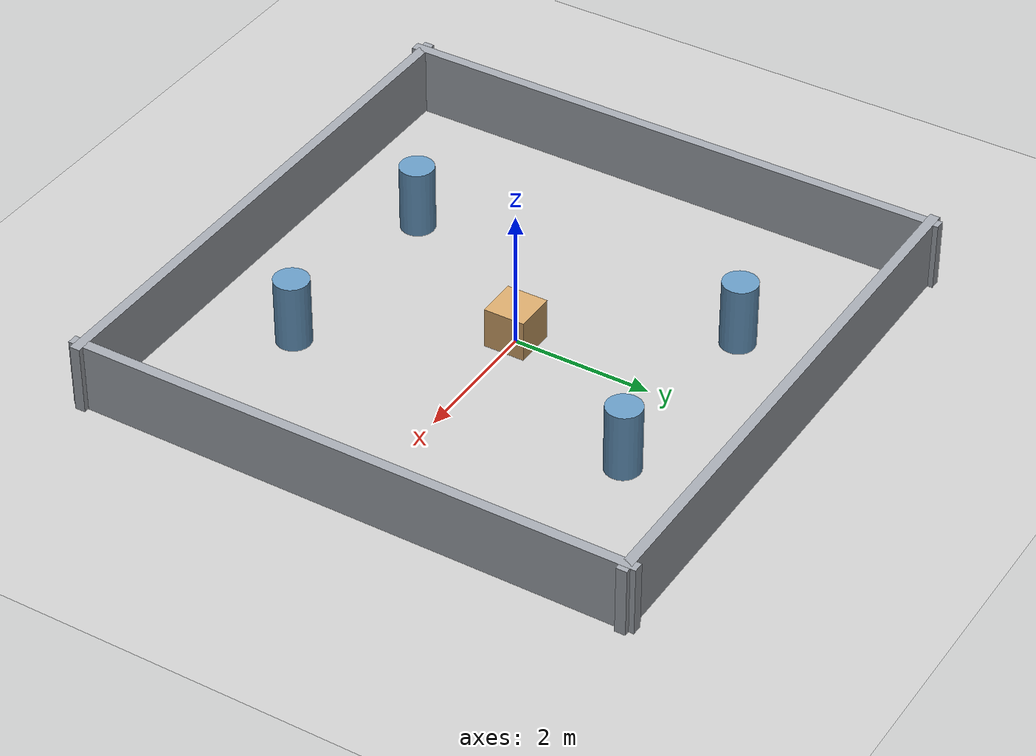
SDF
<sdf version="1.6">
 <world name="social_orbit_8ped_validation">
  <scene>
   <ambient>0.46 0.46 0.48 1</ambient>
   <background>0.93 0.96 1.0 1</background>
   <shadows>true</shadows>
  </scene>
  <include><uri>model://sun</uri></include>
  <include><uri>model://ground_plane</uri></include>
  <physics type="ode">
   <real_time_update_rate>0</real_time_update_rate>
   <max_step_size>0.001</max_step_size>
   <real_time_factor>1</real_time_factor>
   <ode>
    <solver>
     <type>quick</type>
     <iters>150</iters>
     <precon_iters>0</precon_iters>
     <sor>1.4</sor>
     <use_dynamic_moi_rescaling>1</use_dynamic_moi_rescaling>
    </solver>
    <constraints>
     <cfm>0.00001</cfm>
     <erp>0.2</erp>
     <contact_max_correcting_vel>2000.0</contact_max_correcting_vel>
     <contact_surface_layer>0.01</contact_surface_layer>
    </constraints>
   </ode>
  </physics>
  <model name="north_wall">
   <static>true</static>
   <pose>0.000000 4.000000 0.500000 0 0 0</pose>
   <link name="link">
    <collision name="collision">
     <geometry><box><size>8.300000 0.150000 1.000000</size></box></geometry>
    </collision>
    <visual name="visual">
     <geometry><box><size>8.300000 0.150000 1.000000</size></box></geometry>
     <material><ambient>0.56 0.57 0.60 1</ambient><diffuse>0.64 0.66 0.69 1</diffuse></material>
    </visual>
   </link>
  </model>
  <model name="south_wall">
   <static>true</static>
   <pose>0.000000 -4.000000 0.500000 0 0 0</pose>
   <link name="link">
    <collision name="collision">
     <geometry><box><size>8.300000 0.150000 1.000000</size></box></geometry>
    </collision>
    <visual name="visual">
     <geometry><box><size>8.300000 0.150000 1.000000</size></box></geometry>
     <material><ambient>0.56 0.57 0.60 1</ambient><diffuse>0.64 0.66 0.69 1</diffuse></material>
    </visual>
   </link>
  </model>
  <model name="west_wall">
   <static>true</static>
   <pose>-4.000000 0.000000 0.500000 0 0 0</pose>
   <link name="link">
    <collision name="collision">
     <geometry><box><size>0.150000 8.300000 1.000000</size></box></geometry>
    </collision>
    <visual name="visual">
     <geometry><box><size>0.150000 8.300000 1.000000</size></box></geometry>
     <material><ambient>0.56 0.57 0.60 1</ambient><diffuse>0.64 0.66 0.69 1</diffuse></material>
    </visual>
   </link>
  </model>
  <model name="east_wall">
   <static>true</static>
   <pose>4.000000 0.000000 0.500000 0 0 0</pose>
   <link name="link">
    <collision name="collision">
     <geometry><box><size>0.150000 8.300000 1.000000</size></box></geometry>
    </collision>
    <visual name="visual">
     <geometry><box><size>0.150000 8.300000 1.000000</size></box></geometry>
     <material><ambient>0.56 0.57 0.60 1</ambient><diffuse>0.64 0.66 0.69 1</diffuse></material>
    </visual>
   </link>
  </model>
  <model name="center_cube">
   <static>true</static>
   <pose>0.000000 0.000000 0.300000 0 0 0</pose>
   <link name="link">
    <collision name="collision">
     <geometry><box><size>0.600000 0.600000 0.600000</size></box></geometry>
    </collision>
    <visual name="visual">
     <geometry><box><size>0.600000 0.600000 0.600000</size></box></geometry>
     <material><ambient>0.75 0.58 0.36 1</ambient><diffuse>0.84 0.66 0.42 1</diffuse></material>
    </visual>
   </link>
  </model>
  <model name="orbit_cylinder_nw">
   <static>true</static>
   <pose>-1.500000 2.500000 0.500000 0 0 0</pose>
   <link name="link">
    <collision name="collision">
     <geometry><cylinder><radius>0.250000</radius><length>1.000000</length></cylinder></geometry>
    </collision>
    <visual name="visual">
     <geometry><cylinder><radius>0.250000</radius><length>1.000000</length></cylinder></geometry>
     <material><ambient>0.34 0.50 0.64 1</ambient><diffuse>0.40 0.60 0.76 1</diffuse></material>
    </visual>
   </link>
  </model>
  <model name="orbit_cylinder_ne">
   <static>true</static>
   <pose>1.500000 2.500000 0.500000 0 0 0</pose>
   <link name="link">
    <collision name="collision">
     <geometry><cylinder><radius>0.250000</radius><length>1.000000</length></cylinder></geometry>
    </collision>
    <visual name="visual">
     <geometry><cylinder><radius>0.250000</radius><length>1.000000</length></cylinder></geometry>
     <material><ambient>0.34 0.50 0.64 1</ambient><diffuse>0.40 0.60 0.76 1</diffuse></material>
    </visual>
   </link>
  </model>
  <model name="orbit_cylinder_sw">
   <static>true</static>
   <pose>-1.500000 -2.500000 0.500000 0 0 0</pose>
   <link name="link">
    <collision name="collision">
     <geometry><cylinder><radius>0.250000</radius><length>1.000000</length></cylinder></geometry>
    </collision>
    <visual name="visual">
     <geometry><cylinder><radius>0.250000</radius><length>1.000000</length></cylinder></geometry>
     <material><ambient>0.34 0.50 0.64 1</ambient><diffuse>0.40 0.60 0.76 1</diffuse></material>
    </visual>
   </link>
  </model>
  <model name="orbit_cylinder_se">
   <static>true</static>
   <pose>1.500000 -2.500000 0.500000 0 0 0</pose>
   <link name="link">
    <collision name="collision">
     <geometry><cylinder><radius>0.250000</radius><length>1.000000</length></cylinder></geometry>
    </collision>
    <visual name="visual">
     <geometry><cylinder><radius>0.250000</radius><length>1.000000</length></cylinder></geometry>
     <material><ambient>0.34 0.50 0.64 1</ambient><diffuse>0.40 0.60 0.76 1</diffuse></material>
    </visual>
   </link>
  </model>
 </world>
</sdf>
